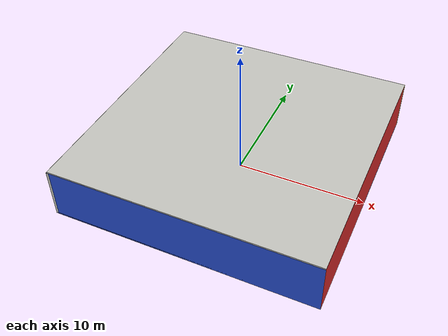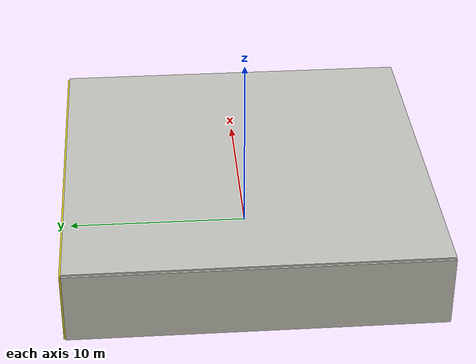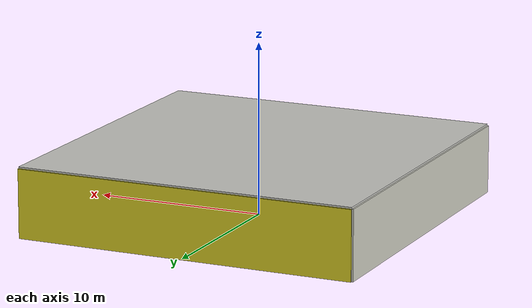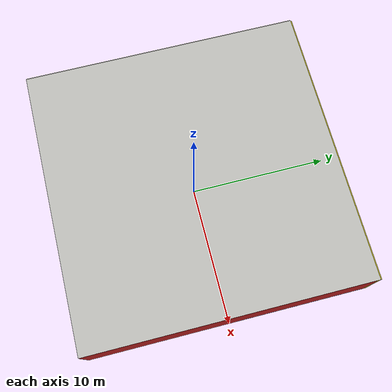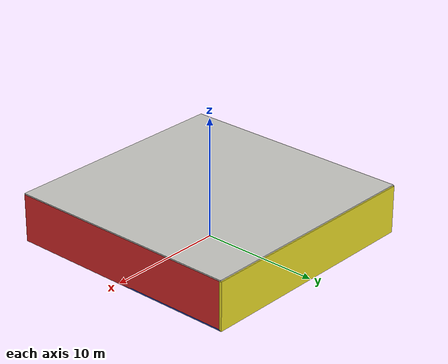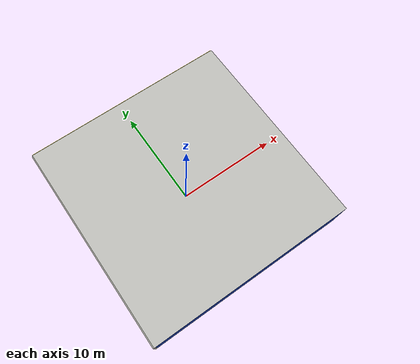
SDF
<sdf version="1.4">
 <world name="default">
  <physics type="ode">
   <max_step_size>0.001</max_step_size>
   <real_time_factor>1</real_time_factor>
   <real_time_update_rate>1000</real_time_update_rate>
   <gravity>0 0 -9.8</gravity>
  </physics>
  <scene><ambient>0.4 0.4 0.4 1</ambient><background>0.7 0.7 0.7 1</background><shadows>1</shadows></scene>
  <model name="Surrounding">
   <static>1</static>
   <link name="Ceiling">
    <collision name="Ceiling_Collision"><geometry><box><size>20 20 0.1</size></box></geometry></collision>
    <visual name="Ceiling_Visual">
     <geometry><box><size>20 20 0.1</size></box></geometry>
     <material>
      <script><uri>file://media/materials/scripts/gazebo.material</uri><name>Gazebo/CeilingTiled</name></script>
     </material>
    </visual>
    <pose>0 0 4.05 0 0 0</pose>
   </link>
   <link name="Wall_South">
    <collision name="Wall_South_Collision">
     <geometry><box><size>20 0 4</size></box></geometry>
     <pose>0 0 2 0 -0 0</pose>
    </collision>
    <visual name="Wall_South_Visual">
     <pose>0 0 2 0 -0 0</pose>
     <geometry><box><size>20 0 4</size></box></geometry>
     <material>
      <script><uri>file://media/materials/scripts/gazebo.material</uri><name>Gazebo/BlueLaser</name></script>
     </material>
    </visual>
    <velocity_decay><linear>0</linear><angular>0</angular></velocity_decay>
    <pose>0 -10 0 0 -0 0</pose>
   </link>
   <link name="Wall_East">
    <collision name="Wall_21_Collision">
     <geometry><box><size>20 0 4</size></box></geometry>
     <pose>0 0 2 0 -0 0</pose>
    </collision>
    <visual name="Wall_21_Visual">
     <pose>0 0 2 0 -0 0</pose>
     <geometry><box><size>20 0 4</size></box></geometry>
     <material>
      <script><uri>file://media/materials/scripts/gazebo.material</uri><name>Gazebo/RedGlow</name></script>
     </material>
    </visual>
    <velocity_decay><linear>0</linear><angular>0</angular></velocity_decay>
    <pose>10 0 0 0 -0 1.5708</pose>
   </link>
   <link name="Wall_North">
    <collision name="Wall_22_Collision">
     <geometry><box><size>20 0.2 4</size></box></geometry>
     <pose>0 0 2 0 -0 0</pose>
    </collision>
    <visual name="Wall_22_Visual">
     <pose>0 0 2 0 -0 0</pose>
     <geometry><box><size>20 0.2 4</size></box></geometry>
     <material>
      <script><uri>file://media/materials/scripts/gazebo.material</uri><name>Gazebo/YellowGlow</name></script>
     </material>
    </visual>
    <velocity_decay><linear>0</linear><angular>0</angular></velocity_decay>
    <pose>0 10 0 0 -0 0</pose>
   </link>
   <link name="Wall_West">
    <collision name="Wall_23_Collision">
     <geometry><box><size>20 0.2 4</size></box></geometry>
     <pose>0 0 2 0 -0 0</pose>
    </collision>
    <visual name="Wall_23_Visual">
     <pose>0 0 2 0 -0 0</pose>
     <geometry><box><size>20 0.2 4</size></box></geometry>
     <material>
      <script><uri>file://media/materials/scripts/gazebo.material</uri><name>Gazebo/PaintedWall</name></script>
     </material>
    </visual>
    <velocity_decay><linear>0</linear><angular>0</angular></velocity_decay>
    <pose>-10 0 0 0 0 -1.5708</pose>
   </link>
   <link name="Ground_link">
    <collision name="collision">
     <pose>0 0 .05 0 -0 0</pose>
     <geometry><box><size>20 20 0.1</size></box></geometry>
    </collision>
    <visual name="visual">
     <pose>0 0 .05 0 -0 0</pose>
     <geometry><box><size>20 20 0.1</size></box></geometry>
     <material>
      <script><uri>file://media/materials/scripts/gazebo.material</uri><name>Gazebo/Blue</name></script>
     </material>
    </visual>
   </link>
   <static>1</static>
  </model>
  <spherical_coordinates>
   <surface_model>EARTH_WGS84</surface_model>
   <latitude_deg>0</latitude_deg>
   <longitude_deg>0</longitude_deg>
   <elevation>0</elevation>
   <heading_deg>0</heading_deg>
  </spherical_coordinates>
  <light name="lightball_0" type="diffuse">
   <diffuse>0.8 0.8 0.8 1</diffuse>
   <specular>0.2 0.2 0.2 1</specular>
   <attenuation>
    <range>100</range>
    <constant>0.7</constant>
    <linear>0.01</linear>
    <quadratic>0.001</quadratic>
   </attenuation>
   <direction>-0.5 0.1 -0.9</direction>
   <pose>4.61088287208 -7.64902296602 1.37420230141 0 0 0</pose>
  </light>
  <light name="lightball_1" type="diffuse">
   <diffuse>0.8 0.8 0.8 1</diffuse>
   <specular>0.2 0.2 0.2 1</specular>
   <attenuation>
    <range>100</range>
    <constant>0.7</constant>
    <linear>0.01</linear>
    <quadratic>0.001</quadratic>
   </attenuation>
   <direction>-0.5 0.1 -0.9</direction>
   <pose>-6.60553496767 7.29128888627 1.75022133366 0 0 0</pose>
  </light>
  <light name="lightball_2" type="diffuse">
   <diffuse>0.8 0.8 0.8 1</diffuse>
   <specular>0.2 0.2 0.2 1</specular>
   <attenuation>
    <range>100</range>
    <constant>0.7</constant>
    <linear>0.01</linear>
    <quadratic>0.001</quadratic>
   </attenuation>
   <direction>-0.5 0.1 -0.9</direction>
   <pose>1.24017215892 6.82217110183 2.85872054052 0 0 0</pose>
  </light>
  <include><uri>model://cabinet</uri><pose>-5.27404843157 -4.1332834521 0 0 0 1.39708072209</pose></include>
  <include>
   <uri>model://construction_cone</uri>
   <pose>1.63864453118 -1.04073497385 0 0 0 2.46095158527</pose>
  </include>
  <include><uri>model://cabinet</uri><pose>2.00399178228 0.88107400203 0 0 0 1.98754997291</pose></include>
  <include>
   <uri>model://construction_cone</uri>
   <pose>5.15510165875 1.9765941462 0 0 0 2.98661275593</pose>
  </include>
 </world>
</sdf>

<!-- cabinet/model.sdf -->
<sdf version="1.5">
  <model name="cabinet">
    <static>true</static>
    <link name="cabinet_bottom_plate">
      <inertial>
        <pose>0 0 -1 0 0 0</pose>
        <inertia>
          <ixx>2.050000</ixx>
          <ixy>0</ixy>
          <ixz>0</ixz>
          <iyy>2.050000</iyy>
          <iyz>0</iyz>
          <izz>2.050000</izz>
        </inertia>
        <mass>25.000000</mass>
      </inertial>
      <collision name="cabinet_bottom_plate_geom">
        <pose>0 0 0.010000 0 0 0</pose>
        <geometry>
          <box>
            <size>0.450000 0.450000 0.020000</size>
          </box>
        </geometry>
      </collision>
      <visual name="cabinet_bottom_plate_geom_visual">
        <pose>0 0 0.010000 0 0 0</pose>
        <geometry>
          <box>
            <size>0.450000 0.450000 0.020000</size>
          </box>
        </geometry>
        <material>
          <script>
            <uri>model://media/materials/scripts/gazebo.material</uri>
            <name>Gazebo/Wood</name>
          </script>
        </material>
      </visual>
      <collision name="cabinet_bottom_plate_geom_cabinet_back_plate">
        <pose>0.235000 0 0.510000 0 0 0</pose>
        <geometry>
          <box>
            <size>0.020000 0.450000 1.020000</size>
          </box>
        </geometry>
      </collision>
      <visual name="cabinet_bottom_plate_geom_cabinet_back_plate_visual">
        <pose>0.235000 0 0.510000 0 0 0</pose>
        <geometry>
          <box>
            <size>0.020000 0.450000 1.020000</size>
          </box>
        </geometry>
        <material>
          <script>
            <uri>model://media/materials/scripts/gazebo.material</uri>
            <name>Gazebo/Wood</name>
          </script>
        </material>
      </visual>
      <collision name="cabinet_bottom_plate_geom_cabinet_left_plate">
        <pose>0 0.235000 0.510000 0 0 0</pose>
        <geometry>
          <box>
            <size>0.450000 0.020000 1.020000</size>
          </box>
        </geometry>
      </collision>
      <visual name="cabinet_bottom_plate_geom_cabinet_left_plate_visual">
        <pose>0 0.235000 0.510000 0 0 0</pose>
        <geometry>
          <box>
            <size>0.450000 0.020000 1.020000</size>
          </box>
        </geometry>
        <material>
          <script>
            <uri>model://media/materials/scripts/gazebo.material</uri>
            <name>Gazebo/Wood</name>
          </script>
        </material>
      </visual>
      <collision name="cabinet_bottom_plate_geom_cabinet_middle_plate">
        <pose>0 0 0.510000 0 0 0</pose>
        <geometry>
          <box>
            <size>0.450000 0.450000 0.020000</size>
          </box>
        </geometry>
      </collision>
      <visual name="cabinet_bottom_plate_geom_cabinet_middle_plate_visual">
        <pose>0 0 0.510000 0 0 0</pose>
        <geometry>
          <box>
            <size>0.450000 0.450000 0.020000</size>
          </box>
        </geometry>
        <material>
          <script>
            <uri>model://media/materials/scripts/gazebo.material</uri>
            <name>Gazebo/Wood</name>
          </script>
        </material>
      </visual>
      <collision name="cabinet_bottom_plate_geom_cabinet_right_plate">
        <pose>0 -0.235000 0.510000 0 0 0</pose>
        <geometry>
          <box>
            <size>0.450000 0.020000 1.020000</size>
          </box>
        </geometry>
      </collision>
      <visual name="cabinet_bottom_plate_geom_cabinet_right_plate_visual">
        <pose>0 -0.235000 0.510000 0 0 0</pose>
        <geometry>
          <box>
            <size>0.450000 0.020000 1.020000</size>
          </box>
        </geometry>
        <material>
          <script>
            <uri>model://media/materials/scripts/gazebo.material</uri>
            <name>Gazebo/Wood</name>
          </script>
        </material>
      </visual>
      <collision name="cabinet_bottom_plate_geom_cabinet_top_plate">
        <pose>0 0 1.010000 0 0 0</pose>
        <geometry>
          <box>
            <size>0.450000 0.450000 0.020000</size>
          </box>
        </geometry>
      </collision>
      <visual name="cabinet_bottom_plate_geom_cabinet_top_plate_visual">
        <pose>0 0 1.010000 0 0 0</pose>
        <geometry>
          <box>
            <size>0.450000 0.450000 0.020000</size>
          </box>
        </geometry>
        <material>
          <script>
            <uri>model://media/materials/scripts/gazebo.material</uri>
            <name>Gazebo/Wood</name>
          </script>
        </material>
      </visual>
    </link>
  </model>
</sdf>

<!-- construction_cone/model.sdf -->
<sdf version="1.5">
  <model name="Construction Cone">
    <link name="link">
      <collision name="collision">
        <geometry>
          <mesh>
            <scale>10 10 10</scale>
            <uri>file://isr-testbed/construction_cone/meshes/construction_cone.dae</uri>
          </mesh>
        </geometry>
      </collision>
      <visual name="visual">
        <geometry>
          <mesh>
            <scale>10 10 10</scale>
            <uri>file://isr-testbed/construction_cone/meshes/construction_cone.dae</uri>
          </mesh>
        </geometry>
      </visual>
    </link>
  </model>
</sdf>
